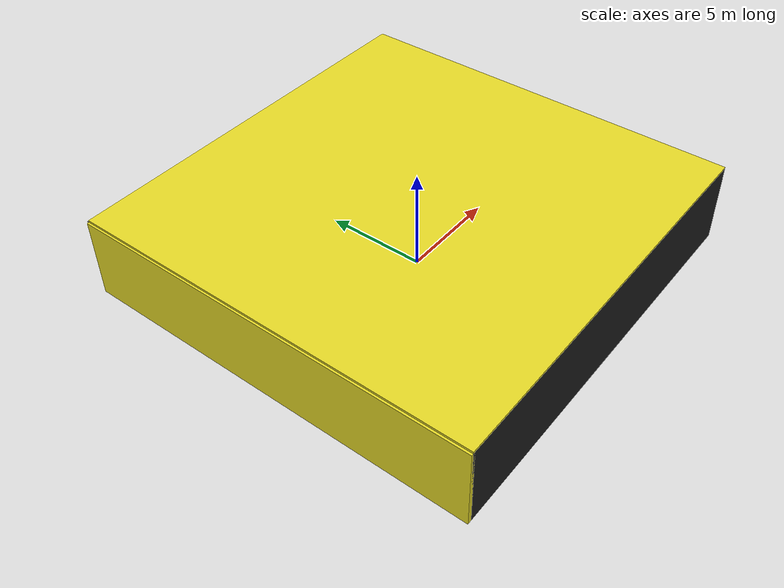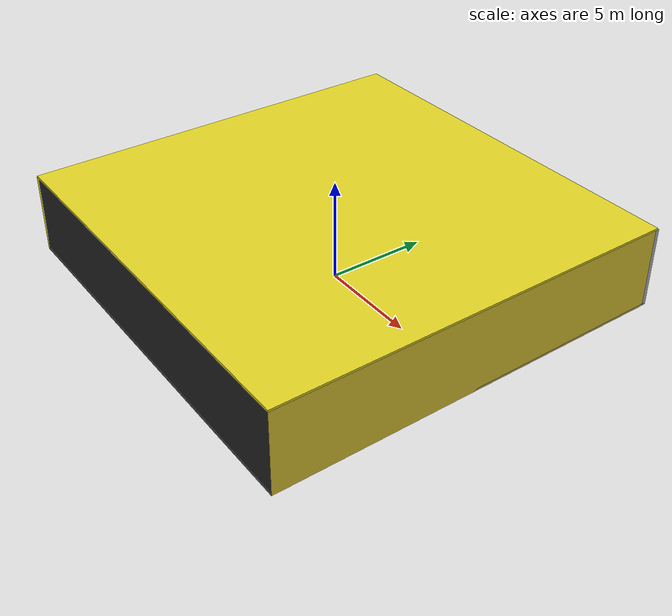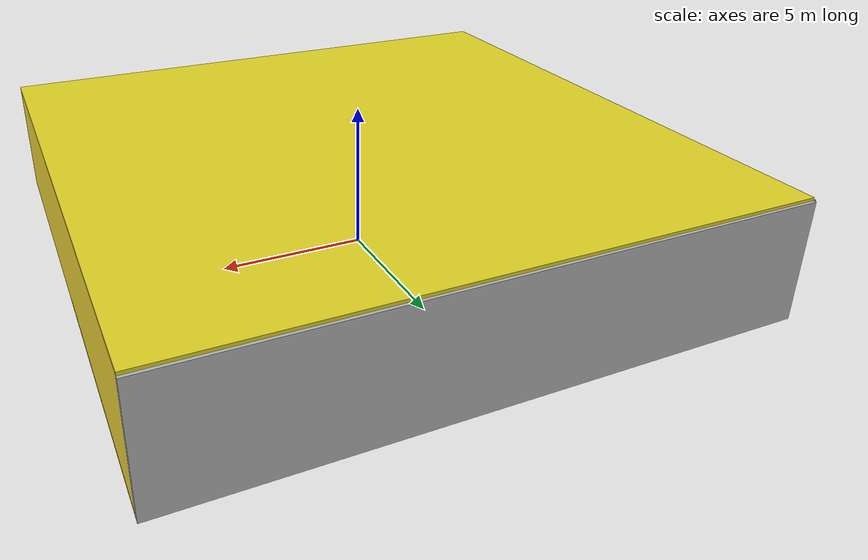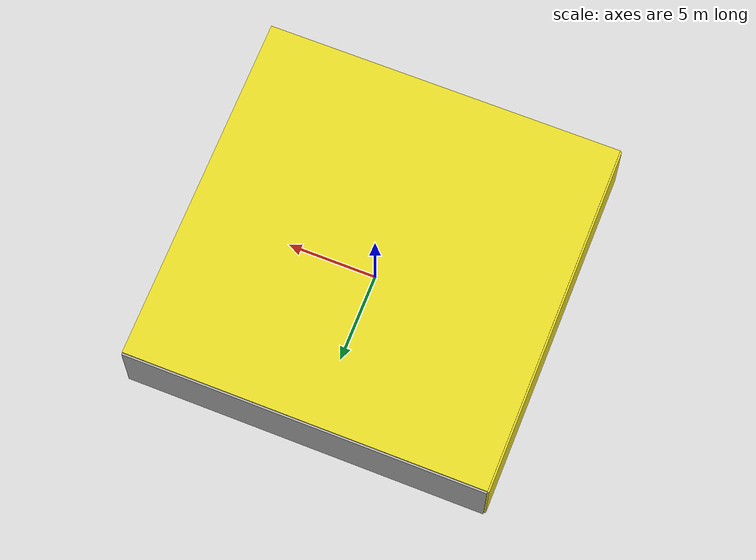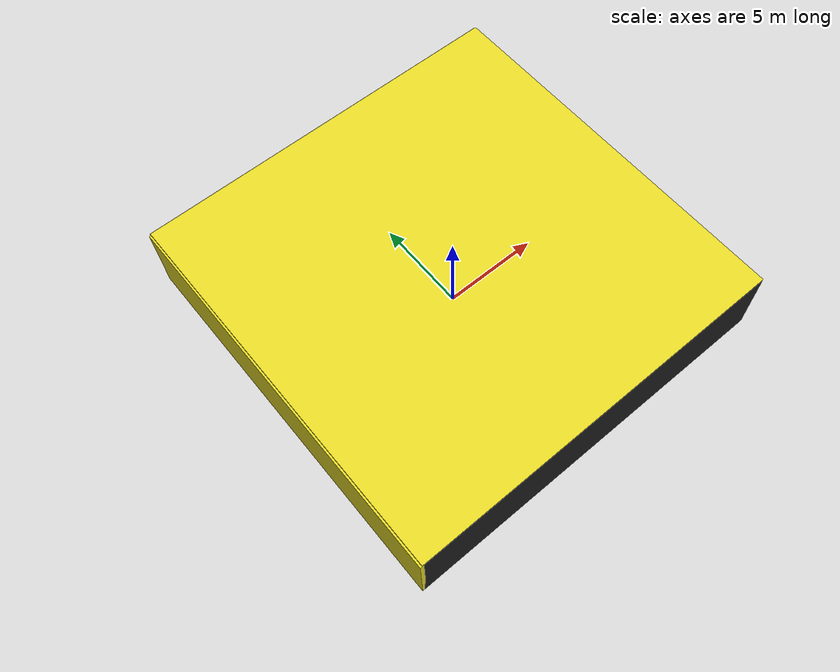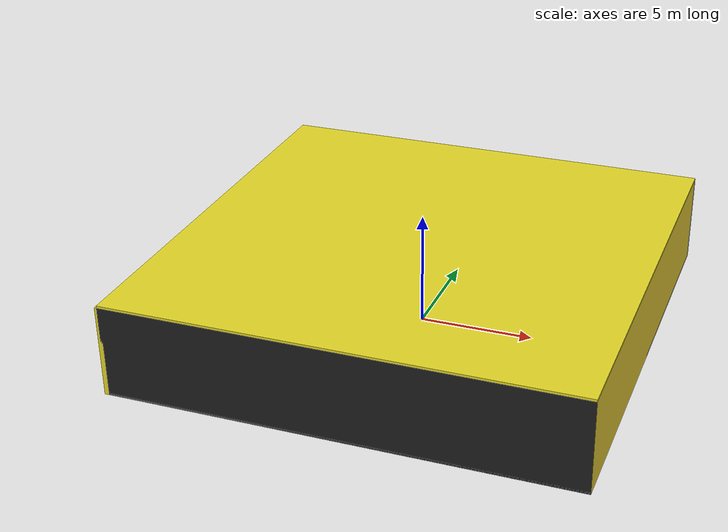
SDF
<sdf version="1.4">
 <world name="default">
  <physics type="ode">
   <max_step_size>0.001</max_step_size>
   <real_time_factor>1</real_time_factor>
   <real_time_update_rate>1000</real_time_update_rate>
   <gravity>0 0 -9.8</gravity>
  </physics>
  <scene><ambient>0.4 0.4 0.4 1</ambient><background>0.7 0.7 0.7 1</background><shadows>1</shadows></scene>
  <model name="Surrounding">
   <static>1</static>
   <link name="Ceiling">
    <collision name="Ceiling_Collision"><geometry><box><size>20 20 0.1</size></box></geometry></collision>
    <visual name="Ceiling_Visual">
     <geometry><box><size>20 20 0.1</size></box></geometry>
     <material>
      <script><uri>file://media/materials/scripts/gazebo.material</uri><name>Gazebo/YellowGlow</name></script>
     </material>
    </visual>
    <pose>0 0 4.05 0 0 0</pose>
   </link>
   <link name="Wall_South">
    <collision name="Wall_South_Collision">
     <geometry><box><size>20 0 4</size></box></geometry>
     <pose>0 0 2 0 -0 0</pose>
    </collision>
    <visual name="Wall_South_Visual">
     <pose>0 0 2 0 -0 0</pose>
     <geometry><box><size>20 0 4</size></box></geometry>
     <material>
      <script><uri>file://media/materials/scripts/gazebo.material</uri><name>Gazebo/FlatBlack</name></script>
     </material>
    </visual>
    <velocity_decay><linear>0</linear><angular>0</angular></velocity_decay>
    <pose>0 -10 0 0 -0 0</pose>
   </link>
   <link name="Wall_East">
    <collision name="Wall_21_Collision">
     <geometry><box><size>20 0 4</size></box></geometry>
     <pose>0 0 2 0 -0 0</pose>
    </collision>
    <visual name="Wall_21_Visual">
     <pose>0 0 2 0 -0 0</pose>
     <geometry><box><size>20 0 4</size></box></geometry>
     <material>
      <script><uri>file://media/materials/scripts/gazebo.material</uri><name>Gazebo/ZincYellow</name></script>
     </material>
    </visual>
    <velocity_decay><linear>0</linear><angular>0</angular></velocity_decay>
    <pose>10 0 0 0 -0 1.5708</pose>
   </link>
   <link name="Wall_North">
    <collision name="Wall_22_Collision">
     <geometry><box><size>20 0.2 4</size></box></geometry>
     <pose>0 0 2 0 -0 0</pose>
    </collision>
    <visual name="Wall_22_Visual">
     <pose>0 0 2 0 -0 0</pose>
     <geometry><box><size>20 0.2 4</size></box></geometry>
     <material>
      <script><uri>file://media/materials/scripts/gazebo.material</uri><name>Gazebo/LightOff</name></script>
     </material>
    </visual>
    <velocity_decay><linear>0</linear><angular>0</angular></velocity_decay>
    <pose>0 10 0 0 -0 0</pose>
   </link>
   <link name="Wall_West">
    <collision name="Wall_23_Collision">
     <geometry><box><size>20 0.2 4</size></box></geometry>
     <pose>0 0 2 0 -0 0</pose>
    </collision>
    <visual name="Wall_23_Visual">
     <pose>0 0 2 0 -0 0</pose>
     <geometry><box><size>20 0.2 4</size></box></geometry>
     <material>
      <script><uri>file://media/materials/scripts/gazebo.material</uri><name>Gazebo/YellowGlow</name></script>
     </material>
    </visual>
    <velocity_decay><linear>0</linear><angular>0</angular></velocity_decay>
    <pose>-10 0 0 0 0 -1.5708</pose>
   </link>
   <link name="Ground_link">
    <collision name="collision">
     <pose>0 0 .05 0 -0 0</pose>
     <geometry><box><size>20 20 0.1</size></box></geometry>
    </collision>
    <visual name="visual">
     <pose>0 0 .05 0 -0 0</pose>
     <geometry><box><size>20 20 0.1</size></box></geometry>
     <material>
      <script><uri>file://media/materials/scripts/gazebo.material</uri><name>Gazebo/GreyTransparent</name></script>
     </material>
    </visual>
   </link>
   <static>1</static>
  </model>
  <spherical_coordinates>
   <surface_model>EARTH_WGS84</surface_model>
   <latitude_deg>0</latitude_deg>
   <longitude_deg>0</longitude_deg>
   <elevation>0</elevation>
   <heading_deg>0</heading_deg>
  </spherical_coordinates>
  <light name="lightball_0" type="diffuse">
   <diffuse>0.8 0.8 0.8 1</diffuse>
   <specular>0.2 0.2 0.2 1</specular>
   <attenuation>
    <range>100</range>
    <constant>0.7</constant>
    <linear>0.01</linear>
    <quadratic>0.001</quadratic>
   </attenuation>
   <direction>-0.5 0.1 -0.9</direction>
   <pose>0.0534066448352 8.42441624439 3.16357615566 0 0 0</pose>
  </light>
  <light name="lightball_1" type="diffuse">
   <diffuse>0.8 0.8 0.8 1</diffuse>
   <specular>0.2 0.2 0.2 1</specular>
   <attenuation>
    <range>100</range>
    <constant>0.7</constant>
    <linear>0.01</linear>
    <quadratic>0.001</quadratic>
   </attenuation>
   <direction>-0.5 0.1 -0.9</direction>
   <pose>7.98036236733 -4.20019762405 3.62520269658 0 0 0</pose>
  </light>
  <light name="lightball_2" type="diffuse">
   <diffuse>0.8 0.8 0.8 1</diffuse>
   <specular>0.2 0.2 0.2 1</specular>
   <attenuation>
    <range>100</range>
    <constant>0.7</constant>
    <linear>0.01</linear>
    <quadratic>0.001</quadratic>
   </attenuation>
   <direction>-0.5 0.1 -0.9</direction>
   <pose>-8.8781861443 8.24155157285 0.580628839208 0 0 0</pose>
  </light>
  <light name="lightball_3" type="diffuse">
   <diffuse>0.8 0.8 0.8 1</diffuse>
   <specular>0.2 0.2 0.2 1</specular>
   <attenuation>
    <range>100</range>
    <constant>0.7</constant>
    <linear>0.01</linear>
    <quadratic>0.001</quadratic>
   </attenuation>
   <direction>-0.5 0.1 -0.9</direction>
   <pose>-1.30324115521 -1.67213982318 1.80853017509 0 0 0</pose>
  </light>
  <light name="lightball_4" type="diffuse">
   <diffuse>0.8 0.8 0.8 1</diffuse>
   <specular>0.2 0.2 0.2 1</specular>
   <attenuation>
    <range>100</range>
    <constant>0.7</constant>
    <linear>0.01</linear>
    <quadratic>0.001</quadratic>
   </attenuation>
   <direction>-0.5 0.1 -0.9</direction>
   <pose>-2.96406449855 3.14835414142 2.92663805298 0 0 0</pose>
  </light>
  <light name="lightball_5" type="diffuse">
   <diffuse>0.8 0.8 0.8 1</diffuse>
   <specular>0.2 0.2 0.2 1</specular>
   <attenuation>
    <range>100</range>
    <constant>0.7</constant>
    <linear>0.01</linear>
    <quadratic>0.001</quadratic>
   </attenuation>
   <direction>-0.5 0.1 -0.9</direction>
   <pose>1.65161092083 2.201694662 3.24843493385 0 0 0</pose>
  </light>
  <light name="lightball_6" type="diffuse">
   <diffuse>0.8 0.8 0.8 1</diffuse>
   <specular>0.2 0.2 0.2 1</specular>
   <attenuation>
    <range>100</range>
    <constant>0.7</constant>
    <linear>0.01</linear>
    <quadratic>0.001</quadratic>
   </attenuation>
   <direction>-0.5 0.1 -0.9</direction>
   <pose>-6.17115786899 -6.70486455656 1.14621279794 0 0 0</pose>
  </light>
  <light name="lightball_7" type="diffuse">
   <diffuse>0.8 0.8 0.8 1</diffuse>
   <specular>0.2 0.2 0.2 1</specular>
   <attenuation>
    <range>100</range>
    <constant>0.7</constant>
    <linear>0.01</linear>
    <quadratic>0.001</quadratic>
   </attenuation>
   <direction>-0.5 0.1 -0.9</direction>
   <pose>-9.96876701757 4.42760572451 1.89801132105 0 0 0</pose>
  </light>
  <light name="lightball_8" type="diffuse">
   <diffuse>0.8 0.8 0.8 1</diffuse>
   <specular>0.2 0.2 0.2 1</specular>
   <attenuation>
    <range>100</range>
    <constant>0.7</constant>
    <linear>0.01</linear>
    <quadratic>0.001</quadratic>
   </attenuation>
   <direction>-0.5 0.1 -0.9</direction>
   <pose>3.34076388601 -6.83758958314 0.667258016508 0 0 0</pose>
  </light>
  <light name="lightball_9" type="diffuse">
   <diffuse>0.8 0.8 0.8 1</diffuse>
   <specular>0.2 0.2 0.2 1</specular>
   <attenuation>
    <range>100</range>
    <constant>0.7</constant>
    <linear>0.01</linear>
    <quadratic>0.001</quadratic>
   </attenuation>
   <direction>-0.5 0.1 -0.9</direction>
   <pose>-1.33987861941 -7.90319110708 2.53756780756 0 0 0</pose>
  </light>
  <light name="lightball_10" type="diffuse">
   <diffuse>0.8 0.8 0.8 1</diffuse>
   <specular>0.2 0.2 0.2 1</specular>
   <attenuation>
    <range>100</range>
    <constant>0.7</constant>
    <linear>0.01</linear>
    <quadratic>0.001</quadratic>
   </attenuation>
   <direction>-0.5 0.1 -0.9</direction>
   <pose>7.24668223635 9.12987968711 1.23929671428 0 0 0</pose>
  </light>
  <include><uri>model://cabinet</uri><pose>-8.38154369907 -7.00662240429 0 0 0 0.184193966262</pose></include>
  <include>
   <uri>model://robocup_3Dsim_goal</uri>
   <pose>-0.618104292102 -7.24361166659 0 0 0 1.3730158153</pose>
  </include>
  <include>
   <uri>model://robocup_3Dsim_goal</uri>
   <pose>-0.311989624391 -1.07140048299 0 0 0 0.235168131336</pose>
  </include>
  <include>
   <uri>model://textured_shapes</uri>
   <pose>-1.40350864469 0.82811656779 0 0 0 0.151826968894</pose>
  </include>
  <include>
   <uri>model://robocup_3Dsim_goal</uri>
   <pose>-1.34108346272 5.49665196369 0 0 0 2.887133389</pose>
  </include>
  <include>
   <uri>model://robocup_3Dsim_goal</uri>
   <pose>2.11407720117 8.42862792225 0 0 0 2.70340205625</pose>
  </include>
  <include>
   <uri>model://textured_shapes</uri>
   <pose>4.84588020084 -4.46857974293 0 0 0 2.1974963168</pose>
  </include>
  <include><uri>model://cabinet</uri><pose>4.0013089009 1.1729889447 0 0 0 1.9208882833</pose></include>
  <include>
   <uri>model://robocup_3Dsim_goal</uri>
   <pose>7.44568276961 0.67846752925 0 0 0 0.711009792087</pose>
  </include>
 </world>
</sdf>

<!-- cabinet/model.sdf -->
<sdf version="1.5">
  <model name="cabinet">
    <static>true</static>
    <link name="cabinet_bottom_plate">
      <inertial>
        <pose>0 0 -1 0 0 0</pose>
        <inertia>
          <ixx>2.050000</ixx>
          <ixy>0</ixy>
          <ixz>0</ixz>
          <iyy>2.050000</iyy>
          <iyz>0</iyz>
          <izz>2.050000</izz>
        </inertia>
        <mass>25.000000</mass>
      </inertial>
      <collision name="cabinet_bottom_plate_geom">
        <pose>0 0 0.010000 0 0 0</pose>
        <geometry>
          <box>
            <size>0.450000 0.450000 0.020000</size>
          </box>
        </geometry>
      </collision>
      <visual name="cabinet_bottom_plate_geom_visual">
        <pose>0 0 0.010000 0 0 0</pose>
        <geometry>
          <box>
            <size>0.450000 0.450000 0.020000</size>
          </box>
        </geometry>
        <material>
          <script>
            <uri>model://media/materials/scripts/gazebo.material</uri>
            <name>Gazebo/Wood</name>
          </script>
        </material>
      </visual>
      <collision name="cabinet_bottom_plate_geom_cabinet_back_plate">
        <pose>0.235000 0 0.510000 0 0 0</pose>
        <geometry>
          <box>
            <size>0.020000 0.450000 1.020000</size>
          </box>
        </geometry>
      </collision>
      <visual name="cabinet_bottom_plate_geom_cabinet_back_plate_visual">
        <pose>0.235000 0 0.510000 0 0 0</pose>
        <geometry>
          <box>
            <size>0.020000 0.450000 1.020000</size>
          </box>
        </geometry>
        <material>
          <script>
            <uri>model://media/materials/scripts/gazebo.material</uri>
            <name>Gazebo/Wood</name>
          </script>
        </material>
      </visual>
      <collision name="cabinet_bottom_plate_geom_cabinet_left_plate">
        <pose>0 0.235000 0.510000 0 0 0</pose>
        <geometry>
          <box>
            <size>0.450000 0.020000 1.020000</size>
          </box>
        </geometry>
      </collision>
      <visual name="cabinet_bottom_plate_geom_cabinet_left_plate_visual">
        <pose>0 0.235000 0.510000 0 0 0</pose>
        <geometry>
          <box>
            <size>0.450000 0.020000 1.020000</size>
          </box>
        </geometry>
        <material>
          <script>
            <uri>model://media/materials/scripts/gazebo.material</uri>
            <name>Gazebo/Wood</name>
          </script>
        </material>
      </visual>
      <collision name="cabinet_bottom_plate_geom_cabinet_middle_plate">
        <pose>0 0 0.510000 0 0 0</pose>
        <geometry>
          <box>
            <size>0.450000 0.450000 0.020000</size>
          </box>
        </geometry>
      </collision>
      <visual name="cabinet_bottom_plate_geom_cabinet_middle_plate_visual">
        <pose>0 0 0.510000 0 0 0</pose>
        <geometry>
          <box>
            <size>0.450000 0.450000 0.020000</size>
          </box>
        </geometry>
        <material>
          <script>
            <uri>model://media/materials/scripts/gazebo.material</uri>
            <name>Gazebo/Wood</name>
          </script>
        </material>
      </visual>
      <collision name="cabinet_bottom_plate_geom_cabinet_right_plate">
        <pose>0 -0.235000 0.510000 0 0 0</pose>
        <geometry>
          <box>
            <size>0.450000 0.020000 1.020000</size>
          </box>
        </geometry>
      </collision>
      <visual name="cabinet_bottom_plate_geom_cabinet_right_plate_visual">
        <pose>0 -0.235000 0.510000 0 0 0</pose>
        <geometry>
          <box>
            <size>0.450000 0.020000 1.020000</size>
          </box>
        </geometry>
        <material>
          <script>
            <uri>model://media/materials/scripts/gazebo.material</uri>
            <name>Gazebo/Wood</name>
          </script>
        </material>
      </visual>
      <collision name="cabinet_bottom_plate_geom_cabinet_top_plate">
        <pose>0 0 1.010000 0 0 0</pose>
        <geometry>
          <box>
            <size>0.450000 0.450000 0.020000</size>
          </box>
        </geometry>
      </collision>
      <visual name="cabinet_bottom_plate_geom_cabinet_top_plate_visual">
        <pose>0 0 1.010000 0 0 0</pose>
        <geometry>
          <box>
            <size>0.450000 0.450000 0.020000</size>
          </box>
        </geometry>
        <material>
          <script>
            <uri>model://media/materials/scripts/gazebo.material</uri>
            <name>Gazebo/Wood</name>
          </script>
        </material>
      </visual>
    </link>
  </model>
</sdf>

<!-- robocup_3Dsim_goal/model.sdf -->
<sdf version="1.5">
  <model name="robocup_3d_goal">
    <static>true</static>
    <link name="left_post">
      <pose>0 1.05 0.45 0 0 0</pose>
      <collision name="collision">
        <geometry>
          <cylinder>
            <radius>0.05</radius>
            <length>0.9</length>
          </cylinder>
        </geometry>
      </collision>
      <visual name="visual">
        <geometry>
          <cylinder>
            <radius>0.05</radius>
            <length>0.9</length>
          </cylinder>
        </geometry>
        <material>
          <script>
            <uri>file://media/materials/scripts/gazebo.material</uri>
            <name>Gazebo/ZincYellow</name>
          </script>
        </material>
      </visual>
    </link>
    <link name="left_support_horiz_lower">
      <pose>0.30 1.05 0.01 0 0 0</pose>
      <collision name="collision">
        <geometry>
          <box>
            <size>0.50 0.02 0.02</size>
          </box>
        </geometry>
      </collision>
      <visual name="visual">
        <geometry>
          <box>
            <size>0.50 0.02 0.02</size>
          </box>
        </geometry>
        <material>
          <script>
            <uri>file://media/materials/scripts/gazebo.material</uri>
            <name>Gazebo/White</name>
          </script>
        </material>
      </visual>
    </link>
    <link name="left_support_horiz_upper">
      <pose>0.30 1.05 0.79 0 0 0</pose>
      <collision name="collision">
        <geometry>
          <box>
            <size>0.50 0.02 0.02</size>
          </box>
        </geometry>
      </collision>
      <visual name="visual">
        <geometry>
          <box>
            <size>0.50 0.02 0.02</size>
          </box>
        </geometry>
        <material>
          <script>
            <uri>file://media/materials/scripts/gazebo.material</uri>
            <name>Gazebo/White</name>
          </script>
        </material>
      </visual>
    </link>
    <link name="left_support_vertical">
      <pose>0.56 1.05 0.4 0 1.5708 0</pose>
      <collision name="collision">
        <geometry>
          <box>
            <size>0.80 0.02 0.02</size>
          </box>
        </geometry>
      </collision>
      <visual name="visual">
        <geometry>
          <box>
            <size>0.80 0.02 0.02</size>
          </box>
        </geometry>
        <material>
          <script>
            <uri>file://media/materials/scripts/gazebo.material</uri>
            <name>Gazebo/White</name>
          </script>
        </material>
      </visual>
    </link>
    <link name="right_support_horiz_lower">
      <pose>0.30 -1.05 0.01 0 0 0</pose>
      <collision name="collision">
        <geometry>
          <box>
            <size>0.50 0.02 0.02</size>
          </box>
        </geometry>
      </collision>
      <visual name="visual">
        <geometry>
          <box>
            <size>0.50 0.02 0.02</size>
          </box>
        </geometry>
        <material>
          <script>
            <uri>file://media/materials/scripts/gazebo.material</uri>
            <name>Gazebo/White</name>
          </script>
        </material>
      </visual>
    </link>
    <link name="right_support_horiz_upper">
      <pose>0.30 -1.05 0.79 0 0 0</pose>
      <collision name="collision">
        <geometry>
          <box>
            <size>0.50 0.02 0.02</size>
          </box>
        </geometry>
      </collision>
      <visual name="visual">
        <geometry>
          <box>
            <size>0.50 0.02 0.02</size>
          </box>
        </geometry>
        <material>
          <script>
            <uri>file://media/materials/scripts/gazebo.material</uri>
            <name>Gazebo/White</name>
          </script>
        </material>
      </visual>
    </link>
    <link name="right_support_vertical">
      <pose>0.56 -1.05 0.4 0 1.5708 0</pose>
      <collision name="collision">
        <geometry>
          <box>
            <size>0.80 0.02 0.02</size>
          </box>
        </geometry>
      </collision>
      <visual name="visual">
        <geometry>
          <box>
            <size>0.80 0.02 0.02</size>
          </box>
        </geometry>
        <material>
          <script>
            <uri>file://media/materials/scripts/gazebo.material</uri>
            <name>Gazebo/White</name>
          </script>
        </material>
      </visual>
    </link>
    <link name="center_support_horiz_lower">
      <pose>0.56 0 0.01 0 1.5708 0</pose>
      <collision name="collision">
        <geometry>
          <box>
            <size>0.02 2.08 0.02</size>
          </box>
        </geometry>
      </collision>
      <visual name="visual">
        <geometry>
          <box>
            <size>0.02 2.08 0.02</size>
          </box>
        </geometry>
        <material>
          <script>
            <uri>file://media/materials/scripts/gazebo.material</uri>
            <name>Gazebo/White</name>
          </script>
        </material>
      </visual>
    </link>
    <link name="center_support_horiz_upper">
      <pose>0.56 0 0.79 0 1.5708 0</pose>
      <collision name="collision">
        <geometry>
          <box>
            <size>0.02 2.08 0.02</size>
          </box>
        </geometry>
      </collision>
      <visual name="visual">
        <geometry>
          <box>
            <size>0.02 2.08 0.02</size>
          </box>
        </geometry>
        <material>
          <script>
            <uri>file://media/materials/scripts/gazebo.material</uri>
            <name>Gazebo/White</name>
          </script>
        </material>
      </visual>
    </link>
    <link name="right_post">
      <pose>0 -1.05 0.45 0 0 0</pose>
      <collision name="collision">
        <geometry>
          <cylinder>
            <radius>0.05</radius>
            <length>0.9</length>
          </cylinder>
        </geometry>
      </collision>
      <visual name="visual">
        <geometry>
          <cylinder>
            <radius>0.05</radius>
            <length>0.9</length>
          </cylinder>
        </geometry>
        <material>
          <script>
            <uri>file://media/materials/scripts/gazebo.material</uri>
            <name>Gazebo/ZincYellow</name>
          </script>
        </material>
      </visual>
    </link>
    <link name="crossbar">
      <pose>0 0 0.85 1.57 1.57 0</pose>
      <collision name="collision">
        <geometry>
          <cylinder>
            <radius>0.05</radius>
            <length>2.0</length>
          </cylinder>
        </geometry>
      </collision>
      <visual name="visual">
        <geometry>
          <cylinder>
            <radius>0.05</radius>
            <length>2.0</length>
          </cylinder>
        </geometry>
        <material>
          <script>
            <uri>file://media/materials/scripts/gazebo.material</uri>
            <name>Gazebo/ZincYellow</name>
          </script>
        </material>
      </visual>
    </link>
    <link name="center_net">
      <pose>0.56 0 0.40 0 0 0</pose>
      <collision name="collision">
        <geometry>
          <box>
            <size>0.01 2.1 0.80</size>
          </box>
        </geometry>
      </collision>
      <visual name="visual">
        <geometry>
          <box>
            <size>0.01 2.1 0.80</size>
          </box>
        </geometry>
        <material>
          <script>
            <uri>model://../model_source/models/robocup09_spl_field/materials/scripts/</uri>
            <uri>model://../model_source/models/robocup09_spl_field/materials/textures/</uri>
            <name>RoboCup/Net</name>
          </script>
        </material>
      </visual>
    </link>
    <link name="left_net">
      <pose>0.30 1.05 0.40 0 0 0</pose>
      <collision name="collision">
        <geometry>
          <box>
            <size>0.50 0.01 0.76</size>
          </box>
        </geometry>
      </collision>
      <visual name="visual">
        <geometry>
          <box>
            <size>0.50 0.01 0.76</size>
          </box>
        </geometry>
        <material>
          <script>
            <uri>model://../model_source/models/robocup09_spl_field/materials/scripts/</uri>
            <uri>model://../model_source/models/robocup09_spl_field/materials/textures/</uri>
            <name>RoboCup/Net</name>
          </script>
        </material>
      </visual>
    </link>
    <link name="right_net">
      <pose>0.30 -1.05 0.40 0 0 0</pose>
      <collision name="collision">
        <geometry>
          <box>
            <size>0.50 0.01 0.76</size>
          </box>
        </geometry>
      </collision>
      <visual name="visual">
        <geometry>
          <box>
            <size>0.50 0.01 0.76</size>
          </box>
        </geometry>
        <material>
          <script>
            <uri>model://../model_source/models/robocup09_spl_field/materials/scripts/</uri>
            <uri>model://../model_source/models/robocup09_spl_field/materials/textures/</uri>
            <name>RoboCup/Net</name>
          </script>
        </material>
      </visual>
    </link>
  </model>
</sdf>

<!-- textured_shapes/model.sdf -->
<sdf version="1.6">
  <model name="textured_shapes">
    <pose>0 0 0.5 0 0 0</pose>
    <link name="box">
      <pose>0 -1.5 0 0 0 0</pose>
      <collision name="collision">
        <geometry>
          <box>
            <size>1 1 1</size>
          </box>
        </geometry>
      </collision>
      <visual name="visual">
        <geometry>
          <box>
            <size>1 1 1</size>
          </box>
        </geometry>
        <material>
          <script>
            <uri>model://../model_source/models/textured_shapes/materials/scripts</uri>
            <uri>model://../model_source/models/textured_shapes/materials/textures</uri>
            <name>TexturedShape/Squares</name>
          </script>
        </material>
      </visual>
    </link>
    <link name="sphere">
      <collision name="collision">
        <geometry>
          <sphere>
            <radius>0.5</radius>
          </sphere>
        </geometry>
      </collision>
      <visual name="visual">
        <geometry>
          <sphere>
            <radius>0.5</radius>
          </sphere>
        </geometry>
        <material>
          <script>
            <uri>model://../model_source/models/textured_shapes/materials/scripts</uri>
            <uri>model://../model_source/models/textured_shapes/materials/textures</uri>
            <name>TexturedShape/Squares</name>
          </script>
        </material>
      </visual>
    </link>
    <link name="cylinder">
      <pose>0 1.5 0 0 0 0</pose>
      <collision name="collision">
        <geometry>
          <cylinder>
            <radius>0.5</radius>
            <length>1</length>
          </cylinder>
        </geometry>
      </collision>
      <visual name="visual">
        <geometry>
          <cylinder>
            <radius>0.5</radius>
            <length>1</length>
          </cylinder>
        </geometry>
        <material>
          <script>
            <uri>model://../model_source/models/textured_shapes/materials/scripts</uri>
            <uri>model://../model_source/models/textured_shapes/materials/textures</uri>
            <name>TexturedShape/Squares</name>
          </script>
        </material>
      </visual>
    </link>
  </model>
</sdf>
